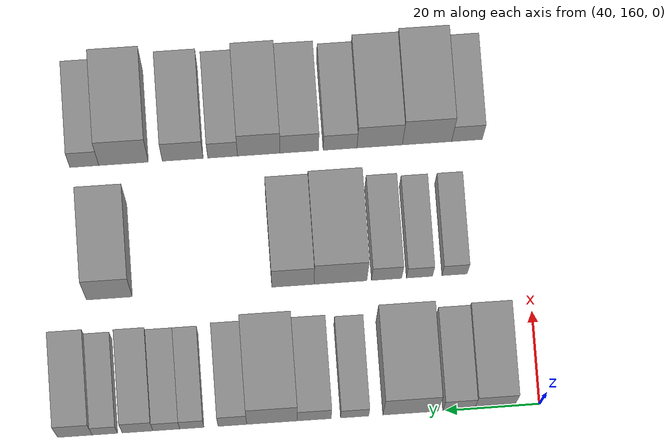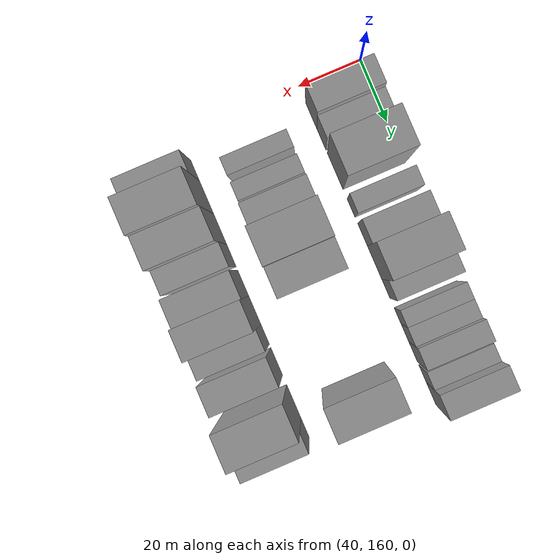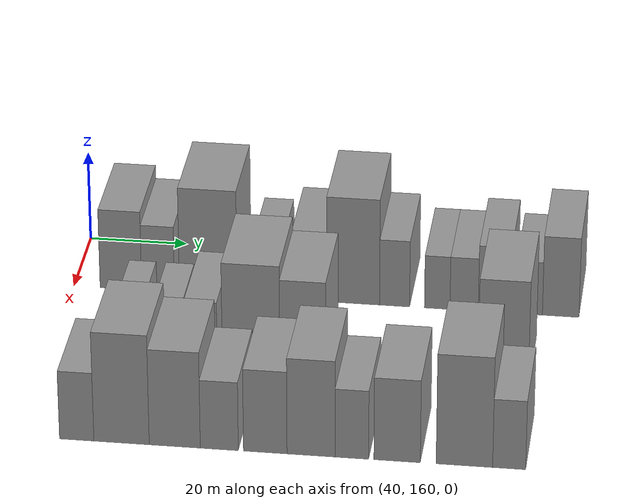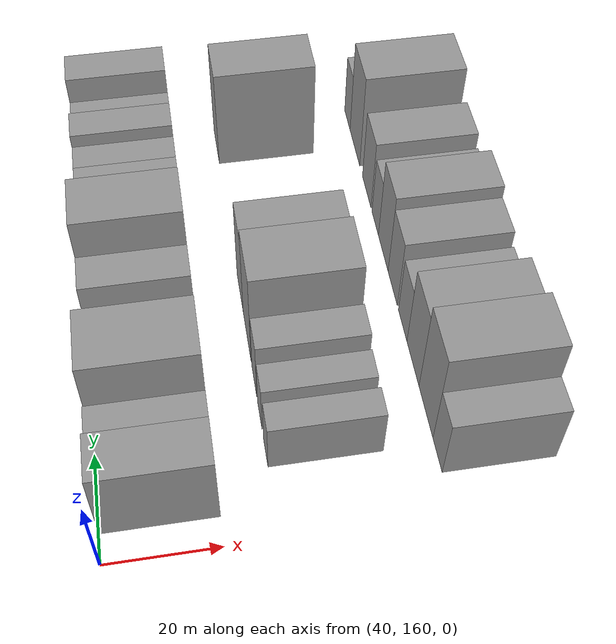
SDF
<sdf version="1.6">
 <world name="default">
  <model name="building_52">
   <static>1</static>
   <pose>50.0000 169.6268 0 0.000000 0.000000 0.000000</pose>
   <link name="link">
    <pose>0 0 9.00 0 0 0</pose>
    <collision name="collision"><geometry><box><size>20.0000 8.5196 18.0000</size></box></geometry></collision>
    <visual name="visual">
     <cast_shadows>0</cast_shadows>
     <geometry><box><size>20.0000 8.5196 18.0000</size></box></geometry>
     <material>
      <script>
       <uri>model://grey_wall/materials/scripts</uri>
       <uri>model://grey_wall/materials/textures</uri>
       <name>vrc/grey_wall</name>
      </script>
     </material>
    </visual>
   </link>
  </model>
  <model name="building_53">
   <static>1</static>
   <pose>50.0000 177.2516 0 0.000000 0.000000 0.000000</pose>
   <link name="link">
    <pose>0 0 7.50 0 0 0</pose>
    <collision name="collision"><geometry><box><size>20.0000 6.7302 15.0000</size></box></geometry></collision>
    <visual name="visual">
     <cast_shadows>0</cast_shadows>
     <geometry><box><size>20.0000 6.7302 15.0000</size></box></geometry>
     <material>
      <script>
       <uri>model://grey_wall/materials/scripts</uri>
       <uri>model://grey_wall/materials/textures</uri>
       <name>vrc/grey_wall</name>
      </script>
     </material>
    </visual>
   </link>
  </model>
  <model name="building_54">
   <static>1</static>
   <pose>50.0000 187.4928 0 0.000000 0.000000 0.000000</pose>
   <link name="link">
    <pose>0 0 12.00 0 0 0</pose>
    <collision name="collision"><geometry><box><size>20.0000 11.7522 24.0000</size></box></geometry></collision>
    <visual name="visual">
     <cast_shadows>0</cast_shadows>
     <geometry><box><size>20.0000 11.7522 24.0000</size></box></geometry>
     <material>
      <script>
       <uri>model://grey_wall/materials/scripts</uri>
       <uri>model://grey_wall/materials/textures</uri>
       <name>vrc/grey_wall</name>
      </script>
     </material>
    </visual>
   </link>
  </model>
  <model name="building_55">
   <static>1</static>
   <pose>50.0000 199.3592 0 0.000000 0.000000 0.000000</pose>
   <link name="link">
    <pose>0 0 6.00 0 0 0</pose>
    <collision name="collision"><geometry><box><size>20.0000 5.9805 12.0000</size></box></geometry></collision>
    <visual name="visual">
     <cast_shadows>0</cast_shadows>
     <geometry><box><size>20.0000 5.9805 12.0000</size></box></geometry>
     <material>
      <script>
       <uri>model://grey_wall/materials/scripts</uri>
       <uri>model://grey_wall/materials/textures</uri>
       <name>vrc/grey_wall</name>
      </script>
     </material>
    </visual>
   </link>
  </model>
  <model name="building_56">
   <static>1</static>
   <pose>50.0000 207.9593 0 0.000000 0.000000 0.000000</pose>
   <link name="link">
    <pose>0 0 7.50 0 0 0</pose>
    <collision name="collision"><geometry><box><size>20.0000 7.2197 15.0000</size></box></geometry></collision>
    <visual name="visual">
     <cast_shadows>0</cast_shadows>
     <geometry><box><size>20.0000 7.2197 15.0000</size></box></geometry>
     <material>
      <script>
       <uri>model://grey_wall/materials/scripts</uri>
       <uri>model://grey_wall/materials/textures</uri>
       <name>vrc/grey_wall</name>
      </script>
     </material>
    </visual>
   </link>
  </model>
  <model name="building_57">
   <static>1</static>
   <pose>50.0000 216.9235 0 0.000000 0.000000 0.000000</pose>
   <link name="link">
    <pose>0 0 12.00 0 0 0</pose>
    <collision name="collision"><geometry><box><size>20.0000 10.7086 24.0000</size></box></geometry></collision>
    <visual name="visual">
     <cast_shadows>0</cast_shadows>
     <geometry><box><size>20.0000 10.7086 24.0000</size></box></geometry>
     <material>
      <script>
       <uri>model://grey_wall/materials/scripts</uri>
       <uri>model://grey_wall/materials/textures</uri>
       <name>vrc/grey_wall</name>
      </script>
     </material>
    </visual>
   </link>
  </model>
  <model name="building_58">
   <static>1</static>
   <pose>50.0000 225.3193 0 0.000000 0.000000 0.000000</pose>
   <link name="link">
    <pose>0 0 7.50 0 0 0</pose>
    <collision name="collision"><geometry><box><size>20.0000 6.0830 15.0000</size></box></geometry></collision>
    <visual name="visual">
     <cast_shadows>0</cast_shadows>
     <geometry><box><size>20.0000 6.0830 15.0000</size></box></geometry>
     <material>
      <script>
       <uri>model://grey_wall/materials/scripts</uri>
       <uri>model://grey_wall/materials/textures</uri>
       <name>vrc/grey_wall</name>
      </script>
     </material>
    </visual>
   </link>
  </model>
  <model name="building_59">
   <static>1</static>
   <pose>50.0000 233.9347 0 0.000000 0.000000 0.000000</pose>
   <link name="link">
    <pose>0 0 6.00 0 0 0</pose>
    <collision name="collision"><geometry><box><size>20.0000 5.1478 12.0000</size></box></geometry></collision>
    <visual name="visual">
     <cast_shadows>0</cast_shadows>
     <geometry><box><size>20.0000 5.1478 12.0000</size></box></geometry>
     <material>
      <script>
       <uri>model://grey_wall/materials/scripts</uri>
       <uri>model://grey_wall/materials/textures</uri>
       <name>vrc/grey_wall</name>
      </script>
     </material>
    </visual>
   </link>
  </model>
  <model name="building_60">
   <static>1</static>
   <pose>50.0000 239.3554 0 0.000000 0.000000 0.000000</pose>
   <link name="link">
    <pose>0 0 6.00 0 0 0</pose>
    <collision name="collision"><geometry><box><size>20.0000 5.6937 12.0000</size></box></geometry></collision>
    <visual name="visual">
     <cast_shadows>0</cast_shadows>
     <geometry><box><size>20.0000 5.6937 12.0000</size></box></geometry>
     <material>
      <script>
       <uri>model://grey_wall/materials/scripts</uri>
       <uri>model://grey_wall/materials/textures</uri>
       <name>vrc/grey_wall</name>
      </script>
     </material>
    </visual>
   </link>
  </model>
  <model name="building_61">
   <static>1</static>
   <pose>50.0000 245.4495 0 0.000000 0.000000 0.000000</pose>
   <link name="link">
    <pose>0 0 7.50 0 0 0</pose>
    <collision name="collision"><geometry><box><size>20.0000 6.4945 15.0000</size></box></geometry></collision>
    <visual name="visual">
     <cast_shadows>0</cast_shadows>
     <geometry><box><size>20.0000 6.4945 15.0000</size></box></geometry>
     <material>
      <script>
       <uri>model://grey_wall/materials/scripts</uri>
       <uri>model://grey_wall/materials/textures</uri>
       <name>vrc/grey_wall</name>
      </script>
     </material>
    </visual>
   </link>
  </model>
  <model name="building_62">
   <static>1</static>
   <pose>50.0000 252.3858 0 0.000000 0.000000 0.000000</pose>
   <link name="link">
    <pose>0 0 6.00 0 0 0</pose>
    <collision name="collision"><geometry><box><size>20.0000 5.3780 12.0000</size></box></geometry></collision>
    <visual name="visual">
     <cast_shadows>0</cast_shadows>
     <geometry><box><size>20.0000 5.3780 12.0000</size></box></geometry>
     <material>
      <script>
       <uri>model://grey_wall/materials/scripts</uri>
       <uri>model://grey_wall/materials/textures</uri>
       <name>vrc/grey_wall</name>
      </script>
     </material>
    </visual>
   </link>
  </model>
  <model name="building_63">
   <static>1</static>
   <pose>50.0000 258.7382 0 0.000000 0.000000 0.000000</pose>
   <link name="link">
    <pose>0 0 9.00 0 0 0</pose>
    <collision name="collision"><geometry><box><size>20.0000 7.3268 18.0000</size></box></geometry></collision>
    <visual name="visual">
     <cast_shadows>0</cast_shadows>
     <geometry><box><size>20.0000 7.3268 18.0000</size></box></geometry>
     <material>
      <script>
       <uri>model://grey_wall/materials/scripts</uri>
       <uri>model://grey_wall/materials/textures</uri>
       <name>vrc/grey_wall</name>
      </script>
     </material>
    </visual>
   </link>
  </model>
  <model name="building_129">
   <static>1</static>
   <pose>79.0000 175.8440 0 0.000000 0.000000 0.000000</pose>
   <link name="link">
    <pose>0 0 6.00 0 0 0</pose>
    <collision name="collision"><geometry><box><size>20.0000 5.4162 12.0000</size></box></geometry></collision>
    <visual name="visual">
     <cast_shadows>0</cast_shadows>
     <geometry><box><size>20.0000 5.4162 12.0000</size></box></geometry>
     <material>
      <script>
       <uri>model://grey_wall/materials/scripts</uri>
       <uri>model://grey_wall/materials/textures</uri>
       <name>vrc/grey_wall</name>
      </script>
     </material>
    </visual>
   </link>
  </model>
  <model name="building_130">
   <static>1</static>
   <pose>79.0000 183.3637 0 0.000000 0.000000 0.000000</pose>
   <link name="link">
    <pose>0 0 6.00 0 0 0</pose>
    <collision name="collision"><geometry><box><size>20.0000 5.6232 12.0000</size></box></geometry></collision>
    <visual name="visual">
     <cast_shadows>0</cast_shadows>
     <geometry><box><size>20.0000 5.6232 12.0000</size></box></geometry>
     <material>
      <script>
       <uri>model://grey_wall/materials/scripts</uri>
       <uri>model://grey_wall/materials/textures</uri>
       <name>vrc/grey_wall</name>
      </script>
     </material>
    </visual>
   </link>
  </model>
  <model name="building_131">
   <static>1</static>
   <pose>79.0000 190.4078 0 0.000000 0.000000 0.000000</pose>
   <link name="link">
    <pose>0 0 7.50 0 0 0</pose>
    <collision name="collision"><geometry><box><size>20.0000 6.4651 15.0000</size></box></geometry></collision>
    <visual name="visual">
     <cast_shadows>0</cast_shadows>
     <geometry><box><size>20.0000 6.4651 15.0000</size></box></geometry>
     <material>
      <script>
       <uri>model://grey_wall/materials/scripts</uri>
       <uri>model://grey_wall/materials/textures</uri>
       <name>vrc/grey_wall</name>
      </script>
     </material>
    </visual>
   </link>
  </model>
  <model name="building_132">
   <static>1</static>
   <pose>79.0000 200.3008 0 0.000000 0.000000 0.000000</pose>
   <link name="link">
    <pose>0 0 12.00 0 0 0</pose>
    <collision name="collision"><geometry><box><size>20.0000 11.3209 24.0000</size></box></geometry></collision>
    <visual name="visual">
     <cast_shadows>0</cast_shadows>
     <geometry><box><size>20.0000 11.3209 24.0000</size></box></geometry>
     <material>
      <script>
       <uri>model://grey_wall/materials/scripts</uri>
       <uri>model://grey_wall/materials/textures</uri>
       <name>vrc/grey_wall</name>
      </script>
     </material>
    </visual>
   </link>
  </model>
  <model name="building_133">
   <static>1</static>
   <pose>79.0000 210.4790 0 0.000000 0.000000 0.000000</pose>
   <link name="link">
    <pose>0 0 10.50 0 0 0</pose>
    <collision name="collision"><geometry><box><size>20.0000 9.0355 21.0000</size></box></geometry></collision>
    <visual name="visual">
     <cast_shadows>0</cast_shadows>
     <geometry><box><size>20.0000 9.0355 21.0000</size></box></geometry>
     <material>
      <script>
       <uri>model://grey_wall/materials/scripts</uri>
       <uri>model://grey_wall/materials/textures</uri>
       <name>vrc/grey_wall</name>
      </script>
     </material>
    </visual>
   </link>
  </model>
  <model name="building_134">
   <static>1</static>
   <pose>79.0000 249.7088 0 0.000000 0.000000 0.000000</pose>
   <link name="link">
    <pose>0 0 12.00 0 0 0</pose>
    <collision name="collision"><geometry><box><size>20.0000 9.8080 24.0000</size></box></geometry></collision>
    <visual name="visual">
     <cast_shadows>0</cast_shadows>
     <geometry><box><size>20.0000 9.8080 24.0000</size></box></geometry>
     <material>
      <script>
       <uri>model://grey_wall/materials/scripts</uri>
       <uri>model://grey_wall/materials/textures</uri>
       <name>vrc/grey_wall</name>
      </script>
     </material>
    </visual>
   </link>
  </model>
  <model name="building_203">
   <static>1</static>
   <pose>108.0000 170.9105 0 0.000000 0.000000 0.000000</pose>
   <link name="link">
    <pose>0 0 7.50 0 0 0</pose>
    <collision name="collision"><geometry><box><size>20.0000 6.6224 15.0000</size></box></geometry></collision>
    <visual name="visual">
     <cast_shadows>0</cast_shadows>
     <geometry><box><size>20.0000 6.6224 15.0000</size></box></geometry>
     <material>
      <script>
       <uri>model://grey_wall/materials/scripts</uri>
       <uri>model://grey_wall/materials/textures</uri>
       <name>vrc/grey_wall</name>
      </script>
     </material>
    </visual>
   </link>
  </model>
  <model name="building_204">
   <static>1</static>
   <pose>108.0000 179.5449 0 0.000000 0.000000 0.000000</pose>
   <link name="link">
    <pose>0 0 12.00 0 0 0</pose>
    <collision name="collision"><geometry><box><size>20.0000 10.6463 24.0000</size></box></geometry></collision>
    <visual name="visual">
     <cast_shadows>0</cast_shadows>
     <geometry><box><size>20.0000 10.6463 24.0000</size></box></geometry>
     <material>
      <script>
       <uri>model://grey_wall/materials/scripts</uri>
       <uri>model://grey_wall/materials/textures</uri>
       <name>vrc/grey_wall</name>
      </script>
     </material>
    </visual>
   </link>
  </model>
  <model name="building_205">
   <static>1</static>
   <pose>108.0000 189.7673 0 0.000000 0.000000 0.000000</pose>
   <link name="link">
    <pose>0 0 10.50 0 0 0</pose>
    <collision name="collision"><geometry><box><size>20.0000 9.7984 21.0000</size></box></geometry></collision>
    <visual name="visual">
     <cast_shadows>0</cast_shadows>
     <geometry><box><size>20.0000 9.7984 21.0000</size></box></geometry>
     <material>
      <script>
       <uri>model://grey_wall/materials/scripts</uri>
       <uri>model://grey_wall/materials/textures</uri>
       <name>vrc/grey_wall</name>
      </script>
     </material>
    </visual>
   </link>
  </model>
  <model name="building_206">
   <static>1</static>
   <pose>108.0000 198.3047 0 0.000000 0.000000 0.000000</pose>
   <link name="link">
    <pose>0 0 7.50 0 0 0</pose>
    <collision name="collision"><geometry><box><size>20.0000 7.2765 15.0000</size></box></geometry></collision>
    <visual name="visual">
     <cast_shadows>0</cast_shadows>
     <geometry><box><size>20.0000 7.2765 15.0000</size></box></geometry>
     <material>
      <script>
       <uri>model://grey_wall/materials/scripts</uri>
       <uri>model://grey_wall/materials/textures</uri>
       <name>vrc/grey_wall</name>
      </script>
     </material>
    </visual>
   </link>
  </model>
  <model name="building_207">
   <static>1</static>
   <pose>108.0000 207.0989 0 0.000000 0.000000 0.000000</pose>
   <link name="link">
    <pose>0 0 9.00 0 0 0</pose>
    <collision name="collision"><geometry><box><size>20.0000 8.3119 18.0000</size></box></geometry></collision>
    <visual name="visual">
     <cast_shadows>0</cast_shadows>
     <geometry><box><size>20.0000 8.3119 18.0000</size></box></geometry>
     <material>
      <script>
       <uri>model://grey_wall/materials/scripts</uri>
       <uri>model://grey_wall/materials/textures</uri>
       <name>vrc/grey_wall</name>
      </script>
     </material>
    </visual>
   </link>
  </model>
  <model name="building_208">
   <static>1</static>
   <pose>108.0000 215.8292 0 0.000000 0.000000 0.000000</pose>
   <link name="link">
    <pose>0 0 10.50 0 0 0</pose>
    <collision name="collision"><geometry><box><size>20.0000 9.1486 21.0000</size></box></geometry></collision>
    <visual name="visual">
     <cast_shadows>0</cast_shadows>
     <geometry><box><size>20.0000 9.1486 21.0000</size></box></geometry>
     <material>
      <script>
       <uri>model://grey_wall/materials/scripts</uri>
       <uri>model://grey_wall/materials/textures</uri>
       <name>vrc/grey_wall</name>
      </script>
     </material>
    </visual>
   </link>
  </model>
  <model name="building_209">
   <static>1</static>
   <pose>108.0000 223.6047 0 0.000000 0.000000 0.000000</pose>
   <link name="link">
    <pose>0 0 7.50 0 0 0</pose>
    <collision name="collision"><geometry><box><size>20.0000 6.4025 15.0000</size></box></geometry></collision>
    <visual name="visual">
     <cast_shadows>0</cast_shadows>
     <geometry><box><size>20.0000 6.4025 15.0000</size></box></geometry>
     <material>
      <script>
       <uri>model://grey_wall/materials/scripts</uri>
       <uri>model://grey_wall/materials/textures</uri>
       <name>vrc/grey_wall</name>
      </script>
     </material>
    </visual>
   </link>
  </model>
  <model name="building_210">
   <static>1</static>
   <pose>108.0000 232.2057 0 0.000000 0.000000 0.000000</pose>
   <link name="link">
    <pose>0 0 9.00 0 0 0</pose>
    <collision name="collision"><geometry><box><size>20.0000 8.7996 18.0000</size></box></geometry></collision>
    <visual name="visual">
     <cast_shadows>0</cast_shadows>
     <geometry><box><size>20.0000 8.7996 18.0000</size></box></geometry>
     <material>
      <script>
       <uri>model://grey_wall/materials/scripts</uri>
       <uri>model://grey_wall/materials/textures</uri>
       <name>vrc/grey_wall</name>
      </script>
     </material>
    </visual>
   </link>
  </model>
  <model name="building_211">
   <static>1</static>
   <pose>108.0000 244.9463 0 0.000000 0.000000 0.000000</pose>
   <link name="link">
    <pose>0 0 12.00 0 0 0</pose>
    <collision name="collision"><geometry><box><size>20.0000 10.6815 24.0000</size></box></geometry></collision>
    <visual name="visual">
     <cast_shadows>0</cast_shadows>
     <geometry><box><size>20.0000 10.6815 24.0000</size></box></geometry>
     <material>
      <script>
       <uri>model://grey_wall/materials/scripts</uri>
       <uri>model://grey_wall/materials/textures</uri>
       <name>vrc/grey_wall</name>
      </script>
     </material>
    </visual>
   </link>
  </model>
  <model name="building_212">
   <static>1</static>
   <pose>108.0000 253.4035 0 0.000000 0.000000 0.000000</pose>
   <link name="link">
    <pose>0 0 7.50 0 0 0</pose>
    <collision name="collision"><geometry><box><size>20.0000 6.2330 15.0000</size></box></geometry></collision>
    <visual name="visual">
     <cast_shadows>0</cast_shadows>
     <geometry><box><size>20.0000 6.2330 15.0000</size></box></geometry>
     <material>
      <script>
       <uri>model://grey_wall/materials/scripts</uri>
       <uri>model://grey_wall/materials/textures</uri>
       <name>vrc/grey_wall</name>
      </script>
     </material>
    </visual>
   </link>
  </model>
 </world>
</sdf>
